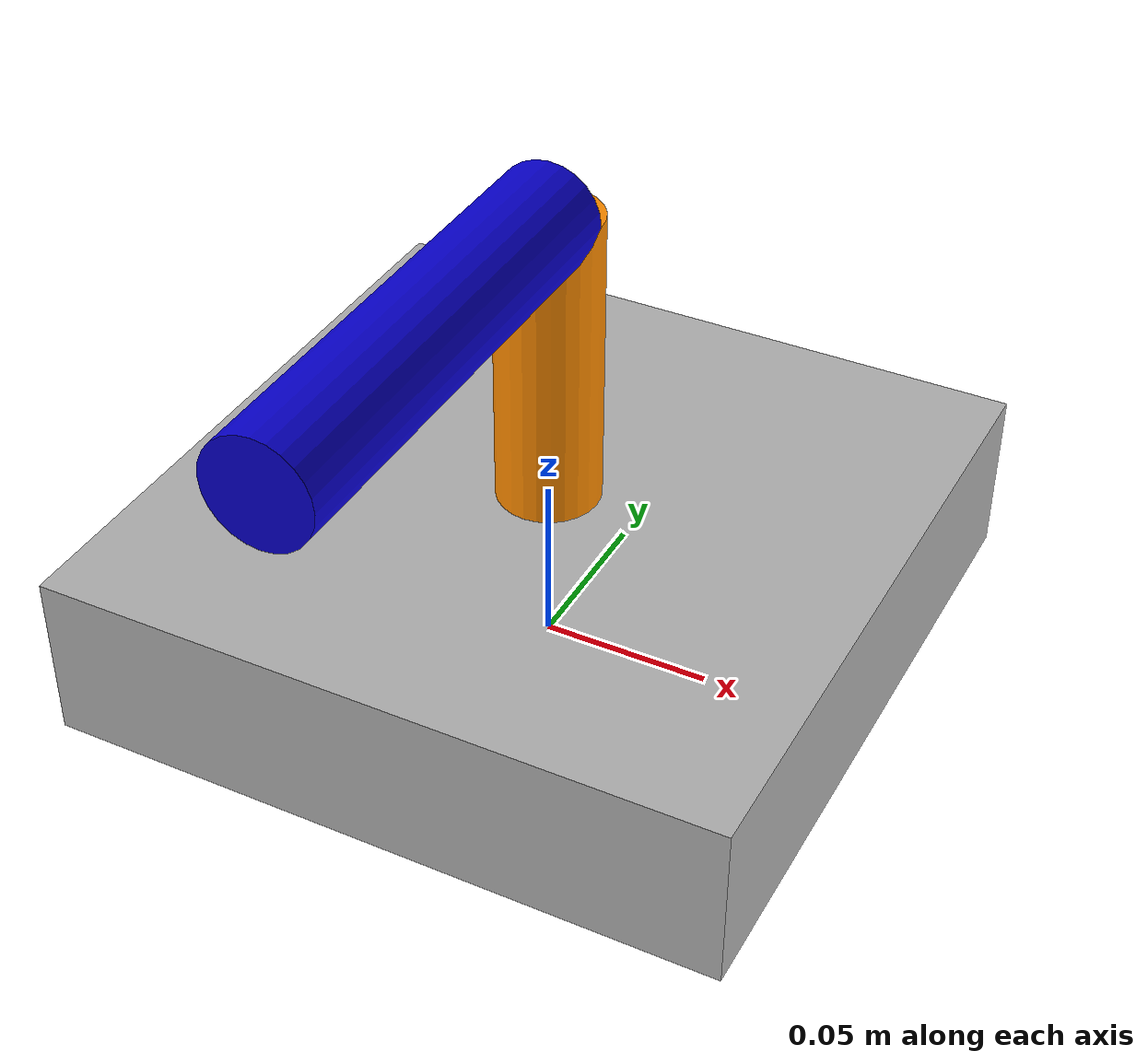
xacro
<?xml version="1.0"?>
<robot xmlns:xacro="http://www.ros.org/wiki/xacro" name="dobot">
    <xacro:property name="values_file" value="$(find lab3PD)/values.yaml"/>
    <xacro:property name="params" value="${xacro.load_yaml(values_file)}"/>

    <xacro:property name="l0" value="${params['link']['l0']}"/>
    <xacro:property name="l1" value="${params['link']['l1']}"/>
    <xacro:property name="l2" value="${params['link']['l2']}"/>
    <xacro:property name="l3" value="${params['link']['l3']}"/>
    <xacro:property name="l4" value="${params['link']['l4']}"/>
    <xacro:property name="l5" value="${params['link']['l5']}"/>

    <xacro:property name="gripper_width" value="${params['link']['gripper']['gripper_open']}" />

    <material name="grey">
        <color rgba="0.7 0.7 0.7 1"/>
    </material>

    <material name="orange">
        <color rgba="1 0.55 0 1"/>
    </material>

    <material name="white">
        <color rgba="1 1 1 1"/>
    </material>

    <material name="blue">
        <color rgba="0.03 0 0.8 1"/>
    </material>

    <xacro:property name="width" value="0.2" />
    <link name="base">
        <visual>
            <geometry>
                <box size="0.2 0.2 0.05"/>
            </geometry>
            <origin xyz="0 0 0.025 " rpy="0 0 0" />
            <material name="grey"/>
        </visual>
    </link>

    <joint name="base_link1_joint" type="revolute">
        <parent link="base"/>
        <child link="link1"/>
        <axis xyz="0 0 1"/>
        <limit effort="1000.0" lower="-1.5708" upper="1.5708" velocity="0.889"/>
        <origin xyz="0 0 0.05 " rpy="0 0 0 "/>
    </joint>

    <link name="link1">
        <visual>
            <geometry>
                <cylinder radius="0.015" length="0.088"/>
            </geometry>
            <origin xyz="0 0 0.044" rpy="0 0 0" />
            <material name="orange"/>
        </visual>
    </link>

    <joint name="link1_link2_joint" type="revolute">
        <parent link="link1"/>
        <child link="link2"/>
        <axis xyz="1 0 0"/>
        <limit effort="1000.0" lower="-1.3962" upper="0" velocity="0.889"/>
        <origin xyz="0 0 0.088" rpy="1.57 0 0 "/>
    </joint>

    <link name="link2">
        <visual>
            <geometry>
                <cylinder radius="0.015" length="0.135"/>
            </geometry>
            <origin xyz="0 0 0.0675" rpy="0 0 0" />
            <material name="blue"/>
        </visual>
    </link>
</robot>
